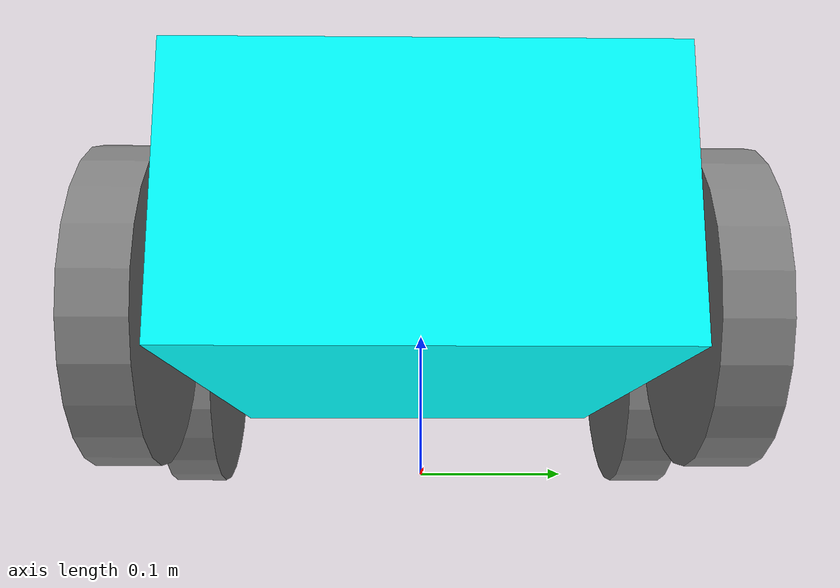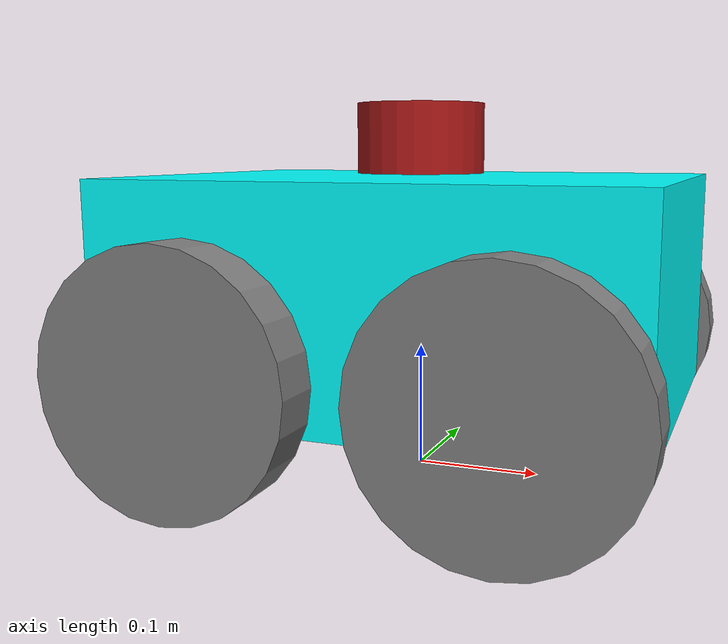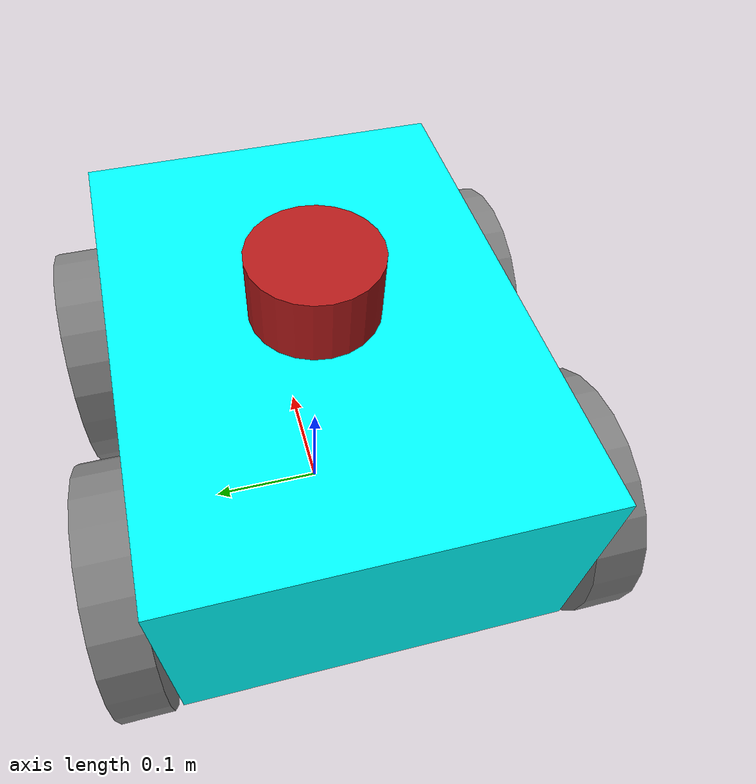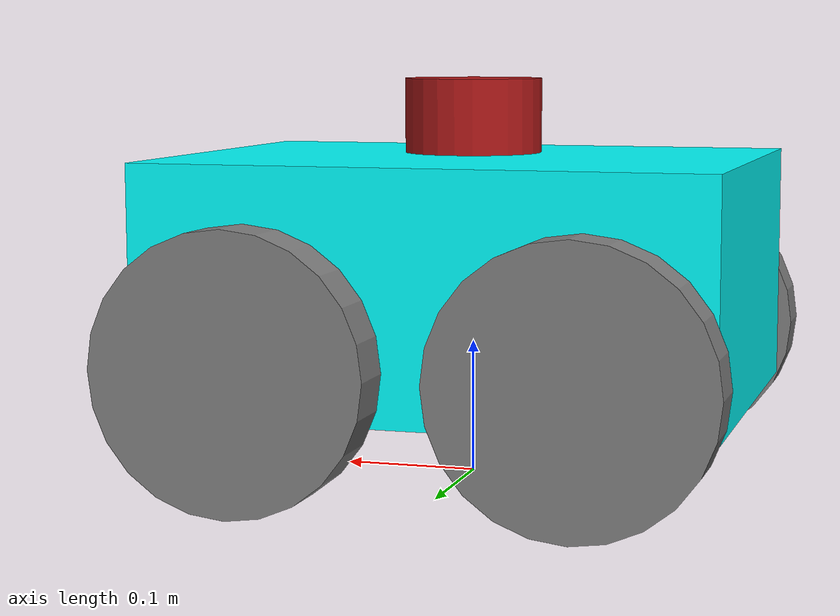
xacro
<?xml version="1.0"?>
<robot xmlns:xacro="http://www.ros.org/wiki/xacro" name="lidar_robot">

  <!-- Define robot dimensions -->
  <xacro:property name="base_width" value="0.31"/>
  <xacro:property name="base_length" value="0.42"/>
  <xacro:property name="base_height" value="0.18"/>

  <xacro:property name="wheel_radius" value="0.10"/>
  <xacro:property name="wheel_width" value="0.04"/>
  <xacro:property name="wheel_ygap" value="0.025"/>
  <xacro:property name="wheel_zoff" value="0.05"/>
  <xacro:property name="wheel_xoff" value="0.12"/>

  <!-- Define intertial property macros -->
  <xacro:macro name="box_inertia" params="m w h d">
    <inertial>
      <origin xyz="0 0 0" rpy="${pi/2} 0 ${pi/2}"/>
      <mass value="${m}"/>
      <inertia ixx="${(m/12) * (h*h + d*d)}" ixy="0.0" ixz="0.0" iyy="${(m/12) * (w*w + d*d)}" iyz="0.0" izz="${(m/12) * (w*w + h*h)}"/>
    </inertial>
  </xacro:macro>

  <xacro:macro name="cylinder_inertia" params="m r h">
    <inertial>
      <origin xyz="0 0 0" rpy="${pi/2} 0 0" />
      <mass value="${m}"/>
      <inertia ixx="${(m/12) * (3*r*r + h*h)}" ixy = "0" ixz = "0" iyy="${(m/12) * (3*r*r + h*h)}" iyz = "0" izz="${(m/2) * (r*r)}"/>
    </inertial>
  </xacro:macro>

  <xacro:macro name="sphere_inertia" params="m r">
    <inertial>
      <mass value="${m}"/>
      <inertia ixx="${(2/5) * m * (r*r)}" ixy="0.0" ixz="0.0" iyy="${(2/5) * m * (r*r)}" iyz="0.0" izz="${(2/5) * m * (r*r)}"/>
    </inertial>
  </xacro:macro>

  <!-- Robot Base -->
  <link name="base_link">
    <visual>
      <geometry>
        <box size="${base_length} ${base_width} ${base_height}"/>
      </geometry>
      <material name="Cyan">
        <color rgba="0 1.0 1.0 1.0"/>
      </material>
    </visual>

    <collision>
      <geometry>
        <box size="${base_length} ${base_width} ${base_height}"/>
      </geometry>
    </collision>

    <xacro:box_inertia m="15" w="${base_width}" d="${base_length}" h="${base_height}"/>
  </link>

  <!-- Robot Footprint -->
  <link name="base_footprint"/>

  <joint name="base_joint" type="fixed">
    <parent link="base_footprint"/>
    <child link="base_link"/>
    <origin xyz="0.0 0.0 ${(wheel_radius+wheel_zoff)}" rpy="0 0 0"/>
  </joint>

  <!-- Wheels -->
  <xacro:macro name="wheel" params="prefix x_reflect y_reflect">
    <link name="${prefix}_link">
      <visual>
        <origin xyz="0 0 0" rpy="${pi/2} 0 0"/>
        <geometry>
          <cylinder radius="${wheel_radius}" length="${wheel_width}"/>
        </geometry>
        <material name="Gray">
          <color rgba="0.5 0.5 0.5 1.0"/>
        </material>
      </visual>

      <collision>
        <origin xyz="0 0 0" rpy="${pi/2} 0 0"/>
        <geometry>
          <cylinder radius="${wheel_radius}" length="${wheel_width}"/>
        </geometry>
      </collision>

      <xacro:cylinder_inertia m="0.5" r="${wheel_radius}" h="${wheel_width}"/>
    </link>

    <joint name="${prefix}_joint" type="continuous">
      <parent link="base_link"/>
      <child link="${prefix}_link"/>
      <origin xyz="${x_reflect*wheel_xoff} ${y_reflect*(base_width/2+wheel_ygap)} ${-wheel_zoff}" rpy="0 0 0"/>
      <axis xyz="0 1 0"/>
    </joint>
  </xacro:macro>

  <xacro:wheel prefix="drivewhl_l" x_reflect="-1" y_reflect="1" />
  <xacro:wheel prefix="drivewhl_r" x_reflect="-1" y_reflect="-1" />

  <xacro:wheel prefix="front_wheel_l" x_reflect="1" y_reflect="1" />
  <xacro:wheel prefix="front_wheel_r" x_reflect="1" y_reflect="-1" />

  <!-- LiDAR -->
  <link name="ldlidar_base">
    <inertial>
      <origin xyz="0 0 0" rpy="0 0 0"/>
      <mass value="0.125"/>
      <inertia ixx="0.001" ixy="0" ixz="0" iyy="0.001" iyz="0" izz="0.001"/>
    </inertial>

    <collision>
      <origin xyz="0 0 0" rpy="0 0 0"/>
      <geometry>
        <cylinder radius="0.0508" length="0.055"/>
      </geometry>
    </collision>

    <visual>
      <origin xyz="0 0 0" rpy="0 0 0"/>
      <geometry>
        <cylinder radius="0.0508" length="0.055"/>
      </geometry>
      <material name="Red">
        <color rgba="0.7 0.1 0.1 1.0"/>
      </material>
    </visual>
  </link>

  <joint name="lidar_joint" type="fixed">
    <parent link="base_link"/>
    <child link="ldlidar_base"/>
    <origin xyz="0 0 0.12" rpy="0 0 0"/>
  </joint>

  <!-- IMU Link -->
  <link name="imu_link"/>

  <joint name="imu_joint" type="fixed">
    <parent link="base_link"/>
    <child link="imu_link"/>
    <origin xyz="0 0 0.05" rpy="0 0 0"/>
  </joint>

  <!-- Gazebo plugins -->
  <gazebo>
    <plugin name="differential_drive_controller" filename="libgazebo_ros_diff_drive.so">

      <!-- Plugin update rate in Hz -->
      <update_rate>50</update_rate>

      <!-- Number of wheel pairs -->
      <num_wheel_pairs>2</num_wheel_pairs>

      <!-- wheels0 -->
      <left_joint>drivewhl_l_joint</left_joint>
      <right_joint>drivewhl_r_joint</right_joint>

      <!-- wheels1-->
      <left_joint>front_wheel_l_joint</left_joint>
      <right_joint>front_wheel_r_joint</right_joint>

      <!-- kinematics -->
      <wheel_separation>0.4</wheel_separation>
      <wheel_separation>0.4</wheel_separation>

      <wheel_diameter>0.2</wheel_diameter>
      <wheel_diameter>0.2</wheel_diameter>

      <!-- limits -->
      <max_wheel_torque>20</max_wheel_torque>
      <max_wheel_acceleration>1.0</max_wheel_acceleration>

      <!-- Receive velocity commands on this ROS topic -->
      <command_topic>cmd_vel</command_topic>

      <!-- output -->
      <publish_odom>true</publish_odom>
      <publish_odom_tf>false</publish_odom_tf>
      <publish_wheel_tf>false</publish_wheel_tf>

      <odometry_topic>wheel_odom</odometry_topic>
      <odometry_frame>odom</odometry_frame>
      <robot_base_frame>base_footprint</robot_base_frame>

    </plugin>
  </gazebo>

  <!-- LiDAR Plugin -->
  <gazebo reference="ldlidar_base">
    <sensor type="ray" name="ld06">
      <pose>0 0 0 0 0 0</pose>
      <visualize>false</visualize>
      <update_rate>10</update_rate>
      <ray>
        <scan>
          <horizontal>
            <samples>360</samples>
            <resolution>1</resolution>
            <min_angle>-3.141592654</min_angle>
            <max_angle>3.141592654</max_angle>
          </horizontal>
        </scan>
        <range>
          <min>0.10</min>
          <max>8.0</max>
          <resolution>0.01</resolution>
        </range>
        <noise>
          <type>gaussian</type>
          <mean>0.0</mean>
          <stddev>0.01</stddev>
        </noise>
      </ray>
      <plugin name="gazebo_ros_ld06_controller" filename="libgazebo_ros_ray_sensor.so">
        <ros>
          <namespace>/ldlidar_node</namespace>
          <remapping>~/out:=scan</remapping>
        </ros>
        <output_type>sensor_msgs/LaserScan</output_type>
        <frame_name>ldlidar_base</frame_name>
      </plugin>
    </sensor>
  </gazebo>

  <!-- IMU Plugin -->
  <gazebo reference="imu_link">
    <sensor name="imu_sensor" type="imu">
      <plugin filename="libgazebo_ros_imu_sensor.so" name="imu_plugin">
        <ros>
          <namespace>/imu</namespace>
          <remapping>~/out:=mpu6050</remapping>
        </ros>
        <initial_orientation_as_reference>false</initial_orientation_as_reference>
      </plugin>
      <always_on>true</always_on>
      <update_rate>100</update_rate>
      <visualize>true</visualize>
      <imu>
        <angular_velocity>
          <x>
            <noise type="gaussian">
              <mean>0.0</mean>
              <stddev>2e-4</stddev>
              <bias_mean>0.0000075</bias_mean>
              <bias_stddev>0.0000008</bias_stddev>
            </noise>
          </x>
          <y>
            <noise type="gaussian">
              <mean>0.0</mean>
              <stddev>2e-4</stddev>
              <bias_mean>0.0000075</bias_mean>
              <bias_stddev>0.0000008</bias_stddev>
            </noise>
          </y>
          <z>
            <noise type="gaussian">
              <mean>0.0</mean>
              <stddev>2e-4</stddev>
              <bias_mean>0.0000075</bias_mean>
              <bias_stddev>0.0000008</bias_stddev>
            </noise>
          </z>
        </angular_velocity>
        <linear_acceleration>
          <x>
            <noise type="gaussian">
              <mean>0.0</mean>
              <stddev>1.7e-2</stddev>
              <bias_mean>0.1</bias_mean>
              <bias_stddev>0.001</bias_stddev>
            </noise>
          </x>
          <y>
            <noise type="gaussian">
              <mean>0.0</mean>
              <stddev>1.7e-2</stddev>
              <bias_mean>0.1</bias_mean>
              <bias_stddev>0.001</bias_stddev>
            </noise>
          </y>
          <z>
            <noise type="gaussian">
              <mean>0.0</mean>
              <stddev>1.7e-2</stddev>
              <bias_mean>0.1</bias_mean>
              <bias_stddev>0.001</bias_stddev>
            </noise>
          </z>
        </linear_acceleration>
      </imu>
    </sensor>
  </gazebo>

</robot>
